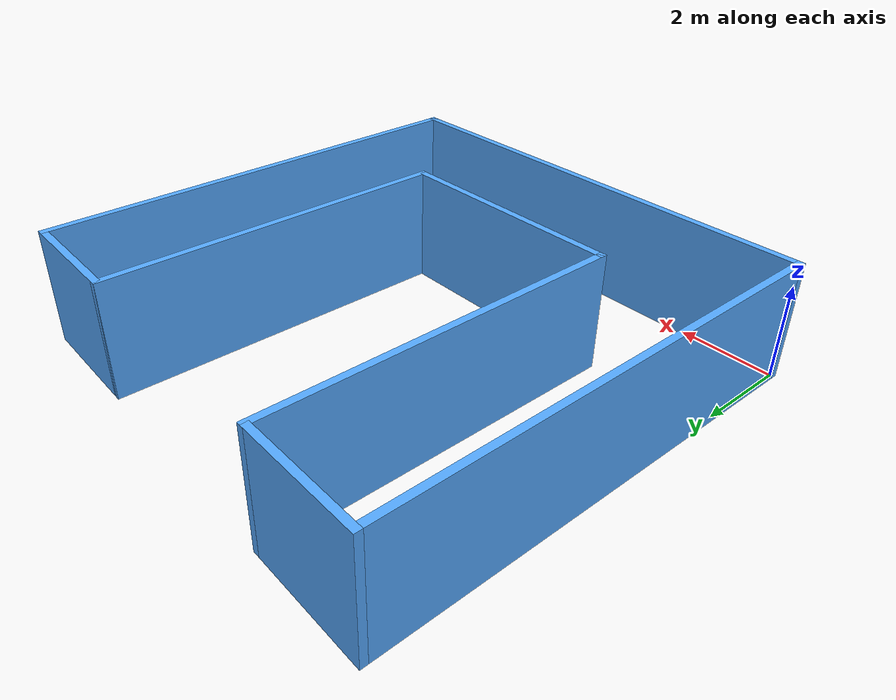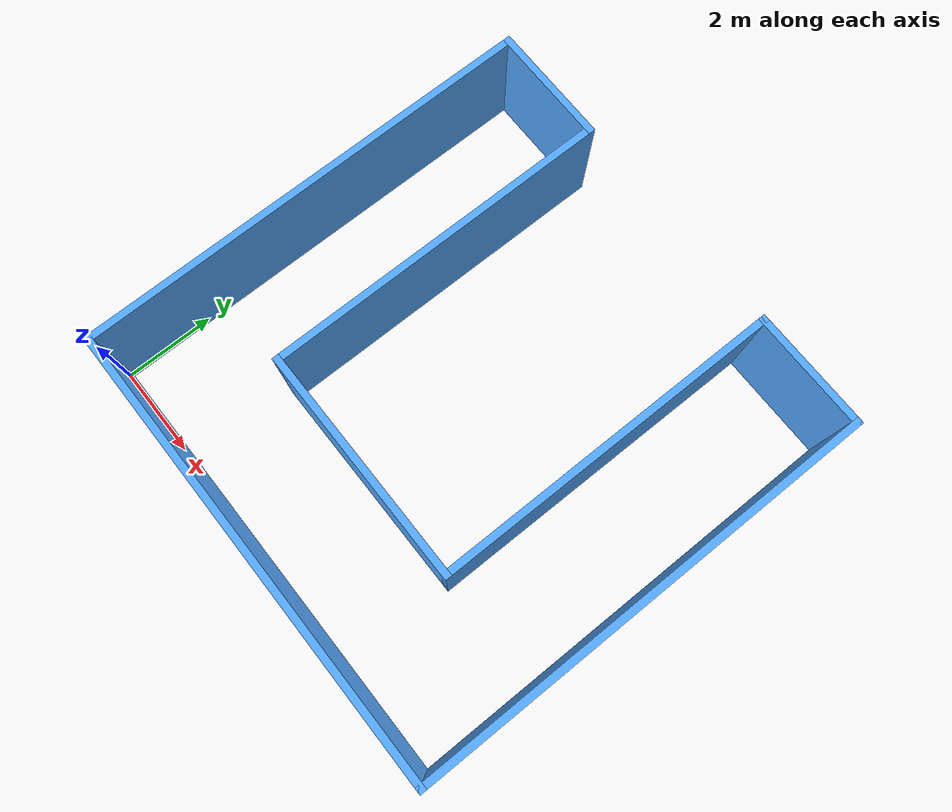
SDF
<?xml version='1.0'?>
<sdf version='1.6'>
  <model name='Udacity'>
    <pose frame=''>5 5 0 0 -0 0</pose>
    <link name='Wall_0'>
      <collision name='Wall_0_Collision'>
        <geometry>
          <box>
            <size>10.15 0.15 2.5</size>
          </box>
        </geometry>
        <pose frame=''>0 0 1.25 0 -0 0</pose>
      </collision>
      <visual name='Wall_0_Visual'>
        <pose frame=''>0 0 1.25 0 -0 0</pose>
        <geometry>
          <box>
            <size>10.15 0.15 2.5</size>
          </box>
        </geometry>
        <material>
          <script>
            <uri>file://media/materials/scripts/gazebo.material</uri>
            <name>Gazebo/Grey</name>
          </script>
          <ambient>0.333333 0.666667 1 1</ambient>
        </material>
        <meta>
          <layer>0</layer>
        </meta>
      </visual>
      <pose frame=''>0 -5 0 0 -0 0</pose>
    </link>
    <link name='Wall_10'>
      <collision name='Wall_10_Collision'>
        <geometry>
          <box>
            <size>7.65 0.15 2.5</size>
          </box>
        </geometry>
        <pose frame=''>0 0 1.25 0 -0 0</pose>
      </collision>
      <visual name='Wall_10_Visual'>
        <pose frame=''>0 0 1.25 0 -0 0</pose>
        <geometry>
          <box>
            <size>7.65 0.15 2.5</size>
          </box>
        </geometry>
        <material>
          <script>
            <uri>file://media/materials/scripts/gazebo.material</uri>
            <name>Gazebo/Grey</name>
          </script>
          <ambient>0.333333 0.666667 1 1</ambient>
        </material>
        <meta>
          <layer>0</layer>
        </meta>
      </visual>
      <pose frame=''>-2.5 1.25 0 0 0 -1.5708</pose>
    </link>
    <link name='Wall_11'>
      <collision name='Wall_11_Collision'>
        <geometry>
          <box>
            <size>5.15 0.15 2.5</size>
          </box>
        </geometry>
        <pose frame=''>0 0 1.25 0 -0 0</pose>
      </collision>
      <visual name='Wall_11_Visual'>
        <pose frame=''>0 0 1.25 0 -0 0</pose>
        <geometry>
          <box>
            <size>5.15 0.15 2.5</size>
          </box>
        </geometry>
        <material>
          <script>
            <uri>file://media/materials/scripts/gazebo.material</uri>
            <name>Gazebo/Grey</name>
          </script>
          <ambient>0.333333 0.666667 1 1</ambient>
        </material>
        <meta>
          <layer>0</layer>
        </meta>
      </visual>
      <pose frame=''>0 -2.5 0 0 -0 0</pose>
    </link>
    <link name='Wall_12'>
      <collision name='Wall_12_Collision'>
        <geometry>
          <box>
            <size>7.65 0.15 2.5</size>
          </box>
        </geometry>
        <pose frame=''>0 0 1.25 0 -0 0</pose>
      </collision>
      <visual name='Wall_12_Visual'>
        <pose frame=''>0 0 1.25 0 -0 0</pose>
        <geometry>
          <box>
            <size>7.65 0.15 2.5</size>
          </box>
        </geometry>
        <material>
          <script>
            <uri>file://media/materials/scripts/gazebo.material</uri>
            <name>Gazebo/Grey</name>
          </script>
          <ambient>0.333333 0.666667 1 1</ambient>
        </material>
        <meta>
          <layer>0</layer>
        </meta>
      </visual>
      <pose frame=''>2.5 1.25 0 0 -0 1.5708</pose>
    </link>
    <link name='Wall_13'>
      <collision name='Wall_13_Collision'>
        <geometry>
          <box>
            <size>2.65 0.15 2.5</size>
          </box>
        </geometry>
        <pose frame=''>0 0 1.25 0 -0 0</pose>
      </collision>
      <visual name='Wall_13_Visual'>
        <pose frame=''>0 0 1.25 0 -0 0</pose>
        <geometry>
          <box>
            <size>2.65 0.15 2.5</size>
          </box>
        </geometry>
        <material>
          <script>
            <uri>file://media/materials/scripts/gazebo.material</uri>
            <name>Gazebo/Grey</name>
          </script>
          <ambient>0.333333 0.666667 1 1</ambient>
        </material>
        <meta>
          <layer>0</layer>
        </meta>
      </visual>
      <pose frame=''>3.75 5 0 0 -0 0</pose>
    </link>
    <link name='Wall_5'>
      <collision name='Wall_5_Collision'>
        <geometry>
          <box>
            <size>10 0.15 2.5</size>
          </box>
        </geometry>
        <pose frame=''>0 0 1.25 0 -0 0</pose>
      </collision>
      <visual name='Wall_5_Visual'>
        <pose frame=''>0 0 1.25 0 -0 0</pose>
        <geometry>
          <box>
            <size>10 0.15 2.5</size>
          </box>
        </geometry>
        <material>
          <script>
            <uri>file://media/materials/scripts/gazebo.material</uri>
            <name>Gazebo/Grey</name>
          </script>
          <ambient>0.333333 0.666667 1 1</ambient>
        </material>
        <meta>
          <layer>0</layer>
        </meta>
      </visual>
      <pose frame=''>-5 -0.075 0 0 -0 1.5708</pose>
    </link>
    <link name='Wall_7'>
      <collision name='Wall_7_Collision'>
        <geometry>
          <box>
            <size>10.15 0.15 2.5</size>
          </box>
        </geometry>
        <pose frame=''>0 0 1.25 0 -0 0</pose>
      </collision>
      <visual name='Wall_7_Visual'>
        <pose frame=''>0 0 1.25 0 -0 0</pose>
        <geometry>
          <box>
            <size>10.15 0.15 2.5</size>
          </box>
        </geometry>
        <material>
          <script>
            <uri>file://media/materials/scripts/gazebo.material</uri>
            <name>Gazebo/Grey</name>
          </script>
          <ambient>0.333333 0.666667 1 1</ambient>
        </material>
        <meta>
          <layer>0</layer>
        </meta>
      </visual>
      <pose frame=''>5 0 0 0 -0 1.5708</pose>
    </link>
    <link name='Wall_9'>
      <collision name='Wall_9_Collision'>
        <geometry>
          <box>
            <size>2.65 0.15 2.5</size>
          </box>
        </geometry>
        <pose frame=''>0 0 1.25 0 -0 0</pose>
      </collision>
      <visual name='Wall_9_Visual'>
        <pose frame=''>0 0 1.25 0 -0 0</pose>
        <geometry>
          <box>
            <size>2.65 0.15 2.5</size>
          </box>
        </geometry>
        <material>
          <script>
            <uri>file://media/materials/scripts/gazebo.material</uri>
            <name>Gazebo/Grey</name>
          </script>
          <ambient>0.333333 0.666667 1 1</ambient>
        </material>
        <meta>
          <layer>0</layer>
        </meta>
      </visual>
      <pose frame=''>-3.75 5 0 0 -0 0</pose>
    </link>
    <static>1</static>
  </model>
</sdf>
